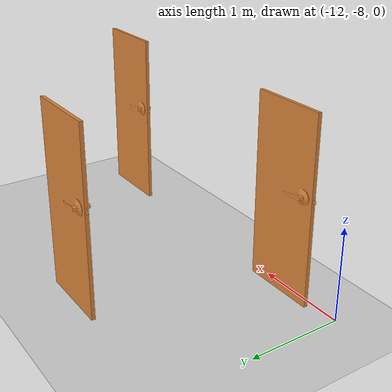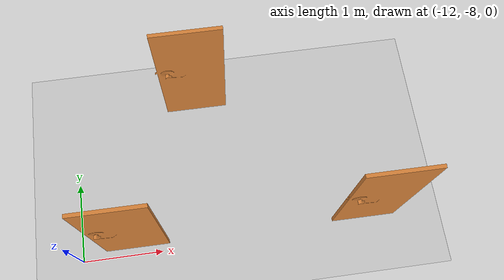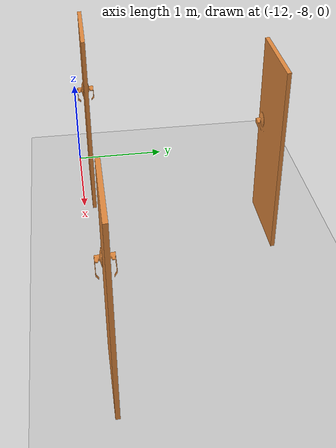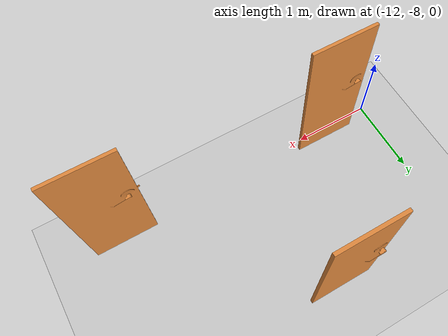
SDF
<sdf version="1.6">
 <world name="default">
  <model name="ground_plane">
   <static>1</static>
   <link name="link">
    <collision name="collision">
     <geometry><plane><normal>0 0 1</normal><size>100 100</size></plane></geometry>
     <surface>
      <contact><collide_bitmask>65535</collide_bitmask></contact>
      <friction><ode><mu>100</mu><mu2>50</mu2></ode></friction>
     </surface>
    </collision>
    <visual name="visual">
     <cast_shadows>0</cast_shadows>
     <geometry><plane><normal>0 0 1</normal><size>100 100</size></plane></geometry>
     <material>
      <script><uri>file://media/materials/scripts/gazebo.material</uri><name>Gazebo/Grey</name></script>
     </material>
    </visual>
   </link>
  </model>
  <model name="door_stand_0">
   <model name="door">
    <link name="link_0">
     <inertial>
      <mass>1</mass>
      <inertia>
       <ixx>0.166667</ixx>
       <ixy>0</ixy>
       <ixz>0</ixz>
       <iyy>0.166667</iyy>
       <iyz>0</iyz>
       <izz>0.166667</izz>
      </inertia>
     </inertial>
     <visual name="visual">
      <geometry>
       <mesh><uri>/home/msjun-xavier/Downloads/door_C.obj</uri><scale>0.002 0.002 0.001</scale></mesh>
      </geometry>
      <material>
       <lighting>1</lighting>
       <script><uri>file://media/materials/scripts/gazebo.material</uri><name>Gazebo/Grey</name></script>
       <shader type="vertex"><normal_map>__default__</normal_map></shader>
       <ambient>0.875 0.533 0.239 1</ambient>
       <diffuse>0.7 0.7 0.7 1</diffuse>
       <specular>0.01 0.01 0.01 1</specular>
       <emissive>0 0 0 1</emissive>
      </material>
     </visual>
     <collision name="collision">
      <geometry>
       <mesh><uri>/home/msjun-xavier/Downloads/door_C.obj</uri><scale>0.002 0.002 0.001</scale></mesh>
      </geometry>
      <surface>
       <friction>
        <ode><mu>1</mu><mu2>1</mu2><fdir1>0 0 0</fdir1><slip1>0</slip1><slip2>0</slip2></ode>
        <torsional>
         <coefficient>1</coefficient>
         <patch_radius>0</patch_radius>
         <surface_radius>0</surface_radius>
         <use_patch_radius>1</use_patch_radius>
         <ode><slip>0</slip></ode>
        </torsional>
       </friction>
       <bounce><restitution_coefficient>0</restitution_coefficient><threshold>1e+06</threshold></bounce>
       <contact>
        <collide_without_contact>0</collide_without_contact>
        <collide_without_contact_bitmask>1</collide_without_contact_bitmask>
        <collide_bitmask>1</collide_bitmask>
        <ode>
         <soft_cfm>0</soft_cfm>
         <soft_erp>0.2</soft_erp>
         <kp>1e+13</kp>
         <kd>1</kd>
         <max_vel>0.01</max_vel>
         <min_depth>0</min_depth>
        </ode>
        <bullet>
         <split_impulse>1</split_impulse>
         <split_impulse_penetration_threshold>-0.01</split_impulse_penetration_threshold>
         <soft_cfm>0</soft_cfm>
         <soft_erp>0.2</soft_erp>
         <kp>1e+13</kp>
         <kd>1</kd>
        </bullet>
       </contact>
      </surface>
     </collision>
    </link>
    <static>1</static>
    <pose>1e-06 5e-06 0 3.09892 1.53609 -1.61633</pose>
   </model>
   <static>0</static>
   <pose>-8.50658 -8 1.08 0 -0 0</pose>
  </model>
  <model name="door_stand_1">
   <model name="door">
    <link name="link_0">
     <inertial>
      <mass>1</mass>
      <inertia>
       <ixx>0.166667</ixx>
       <ixy>0</ixy>
       <ixz>0</ixz>
       <iyy>0.166667</iyy>
       <iyz>0</iyz>
       <izz>0.166667</izz>
      </inertia>
     </inertial>
     <visual name="visual">
      <geometry>
       <mesh><uri>/home/msjun-xavier/Downloads/door_C.obj</uri><scale>0.002 0.002 0.001</scale></mesh>
      </geometry>
      <material>
       <lighting>1</lighting>
       <script><uri>file://media/materials/scripts/gazebo.material</uri><name>Gazebo/Grey</name></script>
       <shader type="vertex"><normal_map>__default__</normal_map></shader>
       <ambient>0.875 0.533 0.239 1</ambient>
       <diffuse>0.7 0.7 0.7 1</diffuse>
       <specular>0.01 0.01 0.01 1</specular>
       <emissive>0 0 0 1</emissive>
      </material>
     </visual>
     <collision name="collision">
      <geometry>
       <mesh><uri>/home/msjun-xavier/Downloads/door_C.obj</uri><scale>0.002 0.002 0.001</scale></mesh>
      </geometry>
      <surface>
       <friction>
        <ode><mu>1</mu><mu2>1</mu2><fdir1>0 0 0</fdir1><slip1>0</slip1><slip2>0</slip2></ode>
        <torsional>
         <coefficient>1</coefficient>
         <patch_radius>0</patch_radius>
         <surface_radius>0</surface_radius>
         <use_patch_radius>1</use_patch_radius>
         <ode><slip>0</slip></ode>
        </torsional>
       </friction>
       <bounce><restitution_coefficient>0</restitution_coefficient><threshold>1e+06</threshold></bounce>
       <contact>
        <collide_without_contact>0</collide_without_contact>
        <collide_without_contact_bitmask>1</collide_without_contact_bitmask>
        <collide_bitmask>1</collide_bitmask>
        <ode>
         <soft_cfm>0</soft_cfm>
         <soft_erp>0.2</soft_erp>
         <kp>1e+13</kp>
         <kd>1</kd>
         <max_vel>0.01</max_vel>
         <min_depth>0</min_depth>
        </ode>
        <bullet>
         <split_impulse>1</split_impulse>
         <split_impulse_penetration_threshold>-0.01</split_impulse_penetration_threshold>
         <soft_cfm>0</soft_cfm>
         <soft_erp>0.2</soft_erp>
         <kp>1e+13</kp>
         <kd>1</kd>
        </bullet>
       </contact>
      </surface>
     </collision>
    </link>
    <static>1</static>
    <pose>1e-06 5e-06 0 3.09892 1.53609 -1.61633</pose>
   </model>
   <static>0</static>
   <pose>-11.4064 -8 1.08 0 -0 0</pose>
  </model>
  <model name="door_stand_8">
   <model name="door">
    <link name="link_0">
     <inertial>
      <mass>1</mass>
      <inertia>
       <ixx>0.166667</ixx>
       <ixy>0</ixy>
       <ixz>0</ixz>
       <iyy>0.166667</iyy>
       <iyz>0</iyz>
       <izz>0.166667</izz>
      </inertia>
     </inertial>
     <visual name="visual">
      <geometry>
       <mesh><uri>/home/msjun-xavier/Downloads/door_C.obj</uri><scale>0.002 0.002 0.001</scale></mesh>
      </geometry>
      <material>
       <lighting>1</lighting>
       <script><uri>file://media/materials/scripts/gazebo.material</uri><name>Gazebo/Grey</name></script>
       <shader type="vertex"><normal_map>__default__</normal_map></shader>
       <ambient>0.875 0.533 0.239 1</ambient>
       <diffuse>0.7 0.7 0.7 1</diffuse>
       <specular>0.01 0.01 0.01 1</specular>
       <emissive>0 0 0 1</emissive>
      </material>
     </visual>
     <collision name="collision">
      <geometry>
       <mesh><uri>/home/msjun-xavier/Downloads/door_C.obj</uri><scale>0.002 0.002 0.001</scale></mesh>
      </geometry>
      <surface>
       <friction>
        <ode><mu>1</mu><mu2>1</mu2><fdir1>0 0 0</fdir1><slip1>0</slip1><slip2>0</slip2></ode>
        <torsional>
         <coefficient>1</coefficient>
         <patch_radius>0</patch_radius>
         <surface_radius>0</surface_radius>
         <use_patch_radius>1</use_patch_radius>
         <ode><slip>0</slip></ode>
        </torsional>
       </friction>
       <bounce><restitution_coefficient>0</restitution_coefficient><threshold>1e+06</threshold></bounce>
       <contact>
        <collide_without_contact>0</collide_without_contact>
        <collide_without_contact_bitmask>1</collide_without_contact_bitmask>
        <collide_bitmask>1</collide_bitmask>
        <ode>
         <soft_cfm>0</soft_cfm>
         <soft_erp>0.2</soft_erp>
         <kp>1e+13</kp>
         <kd>1</kd>
         <max_vel>0.01</max_vel>
         <min_depth>0</min_depth>
        </ode>
        <bullet>
         <split_impulse>1</split_impulse>
         <split_impulse_penetration_threshold>-0.01</split_impulse_penetration_threshold>
         <soft_cfm>0</soft_cfm>
         <soft_erp>0.2</soft_erp>
         <kp>1e+13</kp>
         <kd>1</kd>
        </bullet>
       </contact>
      </surface>
     </collision>
    </link>
    <static>1</static>
    <pose>1e-06 5e-06 0 3.09892 1.53609 -1.61633</pose>
   </model>
   <static>0</static>
   <pose>-10.455 -6.2 1.08 0 -0 0</pose>
  </model>
 </world>
</sdf>
